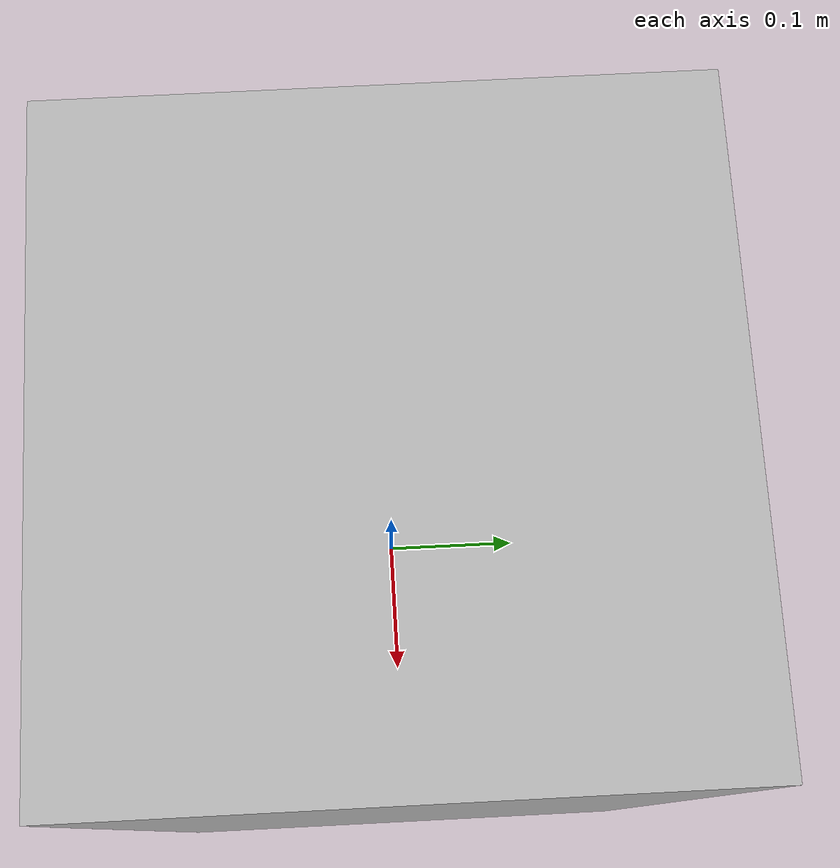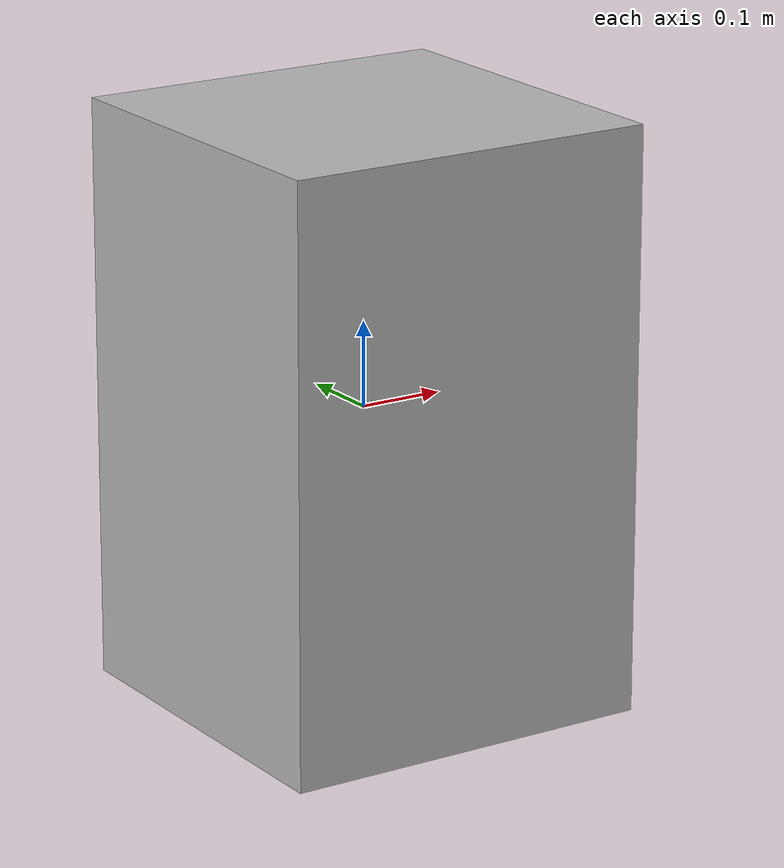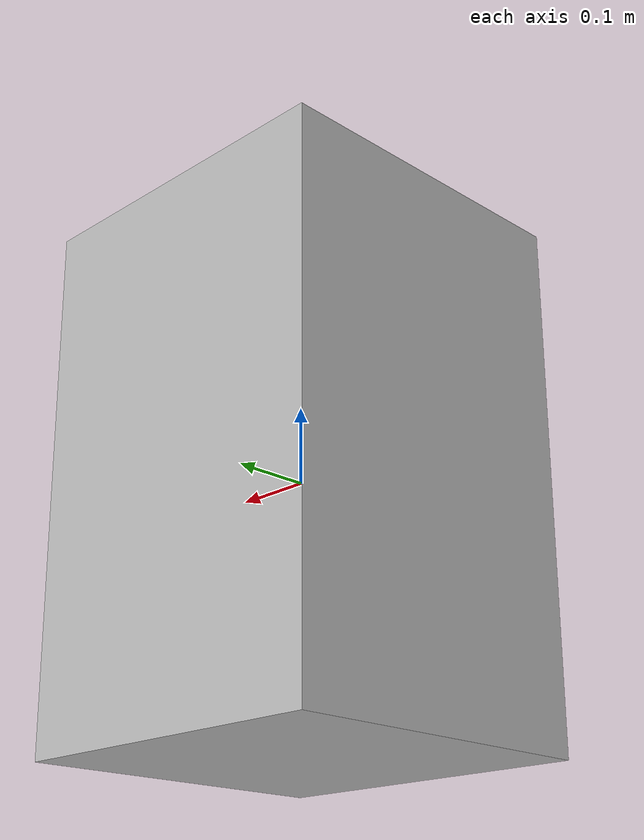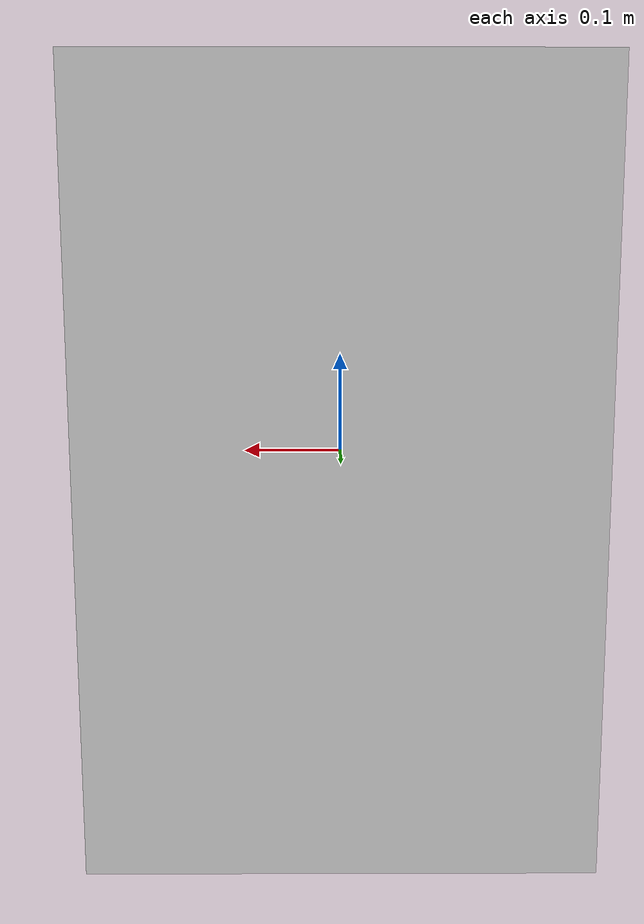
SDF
<?xml version='1.0'?>
<sdf version="1.4">
<model name="test_box">
  <static>true</static>
    <link name="link">
      <inertial>
        <mass>1.0</mass>
          <!-- http://answers.gazebosim.org/question/4372/the-inertia-matrix-explained/ -->
      </inertial>
      <collision name="collision">
        <geometry>
          <box>
            <size>.44 .43 .68</size>
          </box>
        </geometry>
      </collision>
      <visual name="visual">
        <geometry>
          <box>
            <size>.44 .43 .68</size>
          </box>
        </geometry>
      </visual>
      <gravity>1</gravity>
    </link>
  </model>
</sdf>
